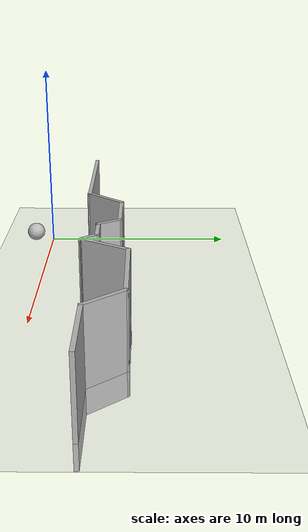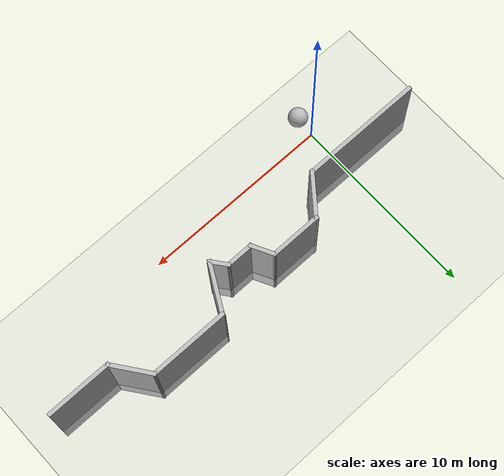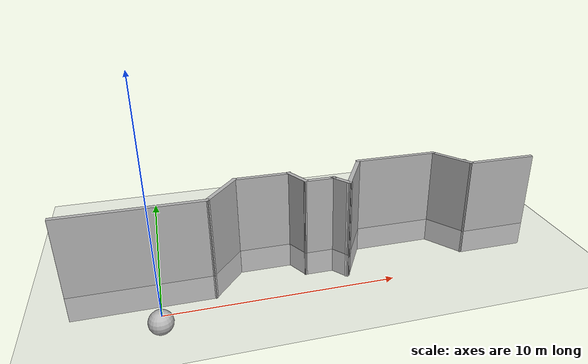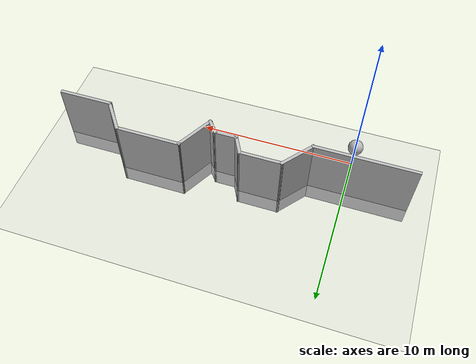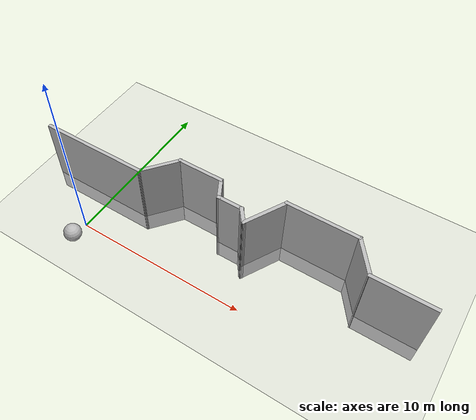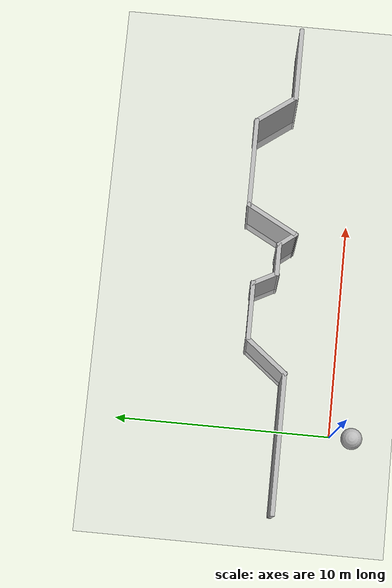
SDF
<sdf version="1.4">
 <world name="vrc_task_1">
  <scene><ambient>0.5 0.5 0.5 1.0</ambient><grid>true</grid><sky><clouds><speed>4</speed></clouds></sky></scene>
  <physics type="ode">
   <gravity>0 0 -9.81</gravity>
   <ode>
    <solver>
     <use_dynamic_moi_rescaling>true</use_dynamic_moi_rescaling>
     <type>quick</type>
     <iters>50</iters>
     <sor>1.0</sor>
    </solver>
    <constraints>
     <cfm>0.0</cfm>
     <erp>0.2</erp>
     <contact_max_correcting_vel>100.0</contact_max_correcting_vel>
     <contact_surface_layer>0.0</contact_surface_layer>
    </constraints>
   </ode>
   <real_time_update_rate>1000</real_time_update_rate>
   <max_step_size>0.001</max_step_size>
  </physics>
  <light type="directional" name="sun">
   <cast_shadows>false</cast_shadows>
   <pose>0 0 100 0 0 0</pose>
   <diffuse>0.8 0.8 0.8 1</diffuse>
   <specular>0.9 0.9 0.9 1</specular>
   <attenuation>
    <range>1000</range>
    <constant>0.9</constant>
    <linear>0.01</linear>
    <quadratic>0.001</quadratic>
   </attenuation>
   <direction>0 0 -1</direction>
  </light>
  <include><uri>model://ground_plane</uri></include>
  <include>
   <uri>model://sample_wall2</uri>
   <static>true</static>
   <name>sample_wall2_1</name>
   <pose>6 5 0 0 -0 0</pose>
  </include>
  <model name="sphere">
   <pose>1 0 0 0 0 0</pose>
   <link name="link">
    <pose>-1 -1 .5 0 0 0</pose>
    <collision name="collision"><geometry><sphere><radius>0.5</radius></sphere></geometry></collision>
    <visual name="visual"><geometry><sphere><radius>0.5</radius></sphere></geometry></visual>
   </link>
  </model>
  <plugin name="ardupilot_sitl_gazebo_plugin" filename="libardupilot_sitl_gazebo_plugin.so"/>
 </world>
</sdf>

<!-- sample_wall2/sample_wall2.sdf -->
<sdf version='1.5'>
  <model name='sample_wall2'>
    <link name='Wall_0'>
      <collision name='Wall_0_Collision'>
        <geometry>
          <box>
            <size>6.4 0.2 5</size>
          </box>
        </geometry>
        <pose>0 0 1.25 0 -0 0</pose>
      </collision>
      <visual name='Wall_0_Visual'>
        <pose>0 0 1.25 0 -0 0</pose>
        <geometry>
          <box>
            <size>6.4 0.2 5</size>
          </box>
        </geometry>
        <material>
          <script>
            <uri>model://sample_wall2/materials/scripts</uri>
            <uri>model://sample_wall2/materials/textures</uri>
            <name>tex/wall</name>
          </script>
        </material>
      </visual>
      <pose>-6.74 -2.56 0 0 -0 0</pose>
    </link>
    <link name='Wall_1'>
      <collision name='Wall_1_Collision'>
        <geometry>
          <box>
            <size>2.44891 0.2 5</size>
          </box>
        </geometry>
        <pose>0 0 1.25 0 -0 0</pose>
      </collision>
      <visual name='Wall_1_Visual'>
        <pose>0 0 1.25 0 -0 0</pose>
        <geometry>
          <box>
            <size>2.44891 0.2 5</size>
          </box>
        </geometry>
        <material>
          <script>
            <uri>model://sample_wall2/materials/scripts</uri>
            <uri>model://sample_wall2/materials/textures</uri>
            <name>tex/wall</name>
          </script>
        </material>
      </visual>
      <pose>-2.94 -1.68 0 0 -0 0.898833</pose>
    </link>
    <link name='Wall_12'>
      <collision name='Wall_12_Collision'>
        <geometry>
          <box>
            <size>3.4269 0.2 5</size>
          </box>
        </geometry>
        <pose>0 0 1.25 0 -0 0</pose>
      </collision>
      <visual name='Wall_12_Visual'>
        <pose>0 0 1.25 0 -0 0</pose>
        <geometry>
          <box>
            <size>3.4269 0.2 5</size>
          </box>
        </geometry>
        <material>
          <script>
            <uri>model://sample_wall2/materials/scripts</uri>
            <uri>model://sample_wall2/materials/textures</uri>
            <name>tex/wall</name>
          </script>
        </material>
      </visual>
      <pose>10.7006 -1.98541 0 0 -0 0</pose>
    </link>
    <link name='Wall_2'>
      <collision name='Wall_2_Collision'>
        <geometry>
          <box>
            <size>2.75 0.2 5</size>
          </box>
        </geometry>
        <pose>0 0 1.25 0 -0 0</pose>
      </collision>
      <visual name='Wall_2_Visual'>
        <pose>0 0 1.25 0 -0 0</pose>
        <geometry>
          <box>
            <size>2.75 0.2 5</size>
          </box>
        </geometry>
        <material>
          <script>
            <uri>model://sample_wall2/materials/scripts</uri>
            <uri>model://sample_wall2/materials/textures</uri>
            <name>tex/wall</name>
          </script>
        </material>
      </visual>
      <pose>-0.965 -0.8 0 0 -0 0</pose>
    </link>
    <link name='Wall_3'>
      <collision name='Wall_3_Collision'>
        <geometry>
          <box>
            <size>1.34948 0.2 5</size>
          </box>
        </geometry>
        <pose>0 0 1.25 0 -0 0</pose>
      </collision>
      <visual name='Wall_3_Visual'>
        <pose>0 0 1.25 0 -0 0</pose>
        <geometry>
          <box>
            <size>1.34948 0.2 5</size>
          </box>
        </geometry>
        <material>
          <script>
            <uri>model://sample_wall2/materials/scripts</uri>
            <uri>model://sample_wall2/materials/textures</uri>
            <name>tex/wall</name>
          </script>
        </material>
      </visual>
      <pose>0.575 -1.31 0 0 0 -1.09159</pose>
    </link>
    <link name='Wall_4'>
      <collision name='Wall_4_Collision'>
        <geometry>
          <box>
            <size>1.53 0.2 5</size>
          </box>
        </geometry>
        <pose>0 0 1.25 0 -0 0</pose>
      </collision>
      <visual name='Wall_4_Visual'>
        <pose>0 0 1.25 0 -0 0</pose>
        <geometry>
          <box>
            <size>1.53 0.2 5</size>
          </box>
        </geometry>
        <material>
          <script>
            <uri>model://sample_wall2/materials/scripts</uri>
            <uri>model://sample_wall2/materials/textures</uri>
            <name>tex/wall</name>
          </script>
        </material>
      </visual>
      <pose>1.505 -1.82 0 0 -0 0</pose>
    </link>
    <link name='Wall_5'>
      <collision name='Wall_5_Collision'>
        <geometry>
          <box>
            <size>1.06215 0.2 5</size>
          </box>
        </geometry>
        <pose>0 0 1.25 0 -0 0</pose>
      </collision>
      <visual name='Wall_5_Visual'>
        <pose>0 0 1.25 0 -0 0</pose>
        <geometry>
          <box>
            <size>1.06215 0.2 5</size>
          </box>
        </geometry>
        <material>
          <script>
            <uri>model://sample_wall2/materials/scripts</uri>
            <uri>model://sample_wall2/materials/textures</uri>
            <name>tex/wall</name>
          </script>
        </material>
      </visual>
      <pose>2.435 -2.16 0 0 0 -0.908736</pose>
    </link>
    <link name='Wall_6'>
      <collision name='Wall_6_Collision'>
        <geometry>
          <box>
            <size>2.68767 0.2 5</size>
          </box>
        </geometry>
        <pose>0 0 1.25 0 -0 0</pose>
      </collision>
      <visual name='Wall_6_Visual'>
        <pose>0 0 1.25 0 -0 0</pose>
        <geometry>
          <box>
            <size>2.68767 0.2 5</size>
          </box>
        </geometry>
        <material>
          <script>
            <uri>model://sample_wall2/materials/scripts</uri>
            <uri>model://sample_wall2/materials/textures</uri>
            <name>tex/wall</name>
          </script>
        </material>
      </visual>
      <pose>3.29 -1.405 0 0 -0 1.07658</pose>
    </link>
    <link name='Wall_8'>
      <collision name='Wall_8_Collision'>
        <geometry>
          <box>
            <size>4.15428 0.2 5</size>
          </box>
        </geometry>
        <pose>0 0 1.25 0 -0 0</pose>
      </collision>
      <visual name='Wall_8_Visual'>
        <pose>0 0 1.25 0 -0 0</pose>
        <geometry>
          <box>
            <size>4.15428 0.2 5</size>
          </box>
        </geometry>
        <material>
          <script>
            <uri>model://sample_wall2/materials/scripts</uri>
            <uri>model://sample_wall2/materials/textures</uri>
            <name>tex/wall</name>
          </script>
        </material>
      </visual>
      <pose>5.86687 -0.292607 0 0 -0 0</pose>
    </link>
    <link name='Wall_9'>
      <collision name='Wall_9_Collision'>
        <geometry>
          <box>
            <size>2.2711 0.2 5</size>
          </box>
        </geometry>
        <pose>0 0 1.25 0 -0 0</pose>
      </collision>
      <visual name='Wall_9_Visual'>
        <pose>0 0 1.25 0 -0 0</pose>
        <geometry>
          <box>
            <size>2.2711 0.2 5</size>
          </box>
        </geometry>
        <material>
          <script>
            <uri>model://sample_wall2/materials/scripts</uri>
            <uri>model://sample_wall2/materials/textures</uri>
            <name>tex/wall</name>
          </script>
        </material>
      </visual>
      <pose>8.45897 -1.12578 0 0 0 -0.934958</pose>
    </link>
    <static>1</static>
  </model>
</sdf>
